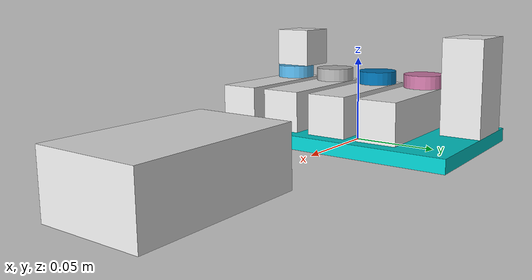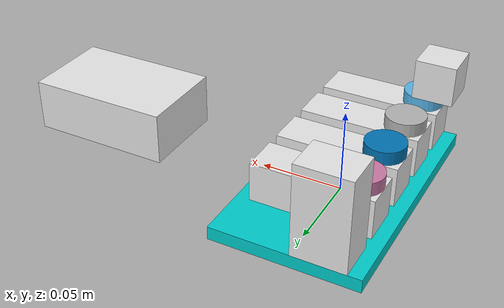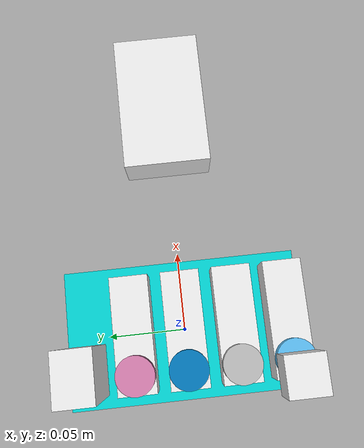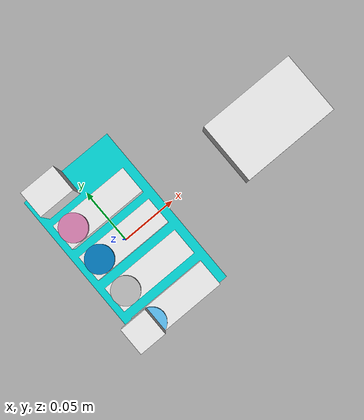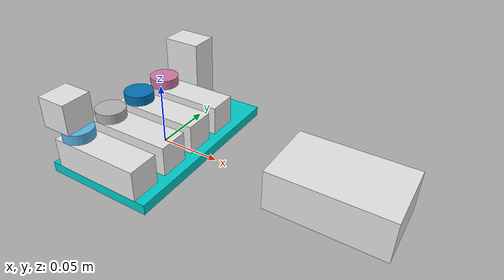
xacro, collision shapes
<?xml version="1.0" ?>
<robot name="basic_robot" xmlns:xacro="http://wiki.ros.org/xacro">
  <xacro:include filename="$(find lego_spike_description)/urdf/lego_materials.urdf.xacro" />
  <xacro:include filename="$(find lego_spike_description)/urdf/lego_hub.urdf.xacro" />
  <xacro:include filename="$(find lego_spike_description)/urdf/lego_base_plate.urdf.xacro" />
  <xacro:include filename="$(find lego_spike_description)/urdf/lego_motor.urdf.xacro" />
  <xacro:include filename="$(find lego_spike_description)/urdf/lego_distance_sensor.urdf.xacro" />
  <xacro:include filename="$(find lego_spike_description)/urdf/lego_color_sensor.urdf.xacro" />

  <link name="base_link" />

  <xacro:lego_base_plate name="base_plate" parent="base_link">
    <origin xyz="0 0 0" rpy="0 0 1.57079" />
  </xacro:lego_base_plate>

  <xacro:lego_hub name="lego_hub" parent="base_link">
    <origin xyz="0.15 0 0" rpy="0 0 0" />
  </xacro:lego_hub>

  <xacro:lego_motor port="a" parent="base_plate_top_link">
    <origin xyz="${lego_stud_spacing * 4} 0 0" rpy="0 0 ${pi/2}" />
  </xacro:lego_motor>
  <xacro:lego_motor port="b" parent="base_plate_top_link">
    <origin xyz="-${lego_stud_spacing * 8} 0 0" rpy="0 0 ${pi/2}" />
  </xacro:lego_motor>
  <xacro:lego_motor port="c" parent="base_plate_top_link">
    <origin xyz="0 0 0" rpy="0 0 ${pi/2}" />
  </xacro:lego_motor>
  <xacro:lego_motor port="d" parent="base_plate_top_link">
    <origin xyz="-${lego_stud_spacing * 4} 0 0" rpy="0 0 ${pi/2}" />
  </xacro:lego_motor>

  <xacro:lego_distance_sensor port="e" parent="base_plate_top_link">
    <origin xyz="${lego_stud_spacing * 8} ${lego_stud_spacing * 1} ${lego_stud_spacing * 3.5}" rpy="-${pi/2} 0 ${pi/2}" />
  </xacro:lego_distance_sensor>

  <xacro:lego_color_sensor port="f" parent="motor_b_wheel_link">
    <origin xyz="0 0 ${lego_stud_spacing * 1.5}" rpy="${pi/2} 0 0" />
  </xacro:lego_color_sensor>
</robot>

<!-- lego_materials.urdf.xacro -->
<robot xmlns:xacro="http://wiki.ros.org/xacro">
  <material name="lego_white">
    <color rgba="0.9 0.9 0.9 1.0" />
  </material>
  <material name="lego_black">
    <color rgba="0.1 0.1 0.1 1.0" />
  </material>
  <material name="lego_teal">
    <color rgba="0.0 0.8 0.8 1.0" />
  </material>
  <material name="lego_yellow">
    <color rgba="0.8 0.8 0.0 1.0" />
  </material>

</robot>

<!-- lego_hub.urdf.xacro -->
<robot xmlns:xacro="http://wiki.ros.org/xacro">
  <xacro:include filename="$(find lego_spike_description)/urdf/lego_dimensions.urdf.xacro" />

  <xacro:macro name="lego_hub" params="name parent *origin">
    <link name="${name}_link">
      <visual>
        <geometry>
          <mesh filename="package://lego_spike_description/meshes/SpikePrimeHub.stl" scale="0.0004 0.0004 0.0004"/>
        </geometry>
        <material name="lego_white" />
        <origin xyz="0.004 00.004 0" rpy="1.5707963267948966 0 -1.5707963267948966" />
      </visual>
      <collision>
        <geometry>
          <box size="0.088 0.056 0.032" />
        </geometry>
        <origin xyz="0 0 0.016" rpy="0 0 0" />
      </collision>
    </link>
    <joint name="${name}_joint" type="fixed">
      <parent link="${parent}" />
      <child link="${name}_link" />
      <xacro:insert_block name="origin" />
    </joint>

    <link name="${name}_imu_link" />
    <joint name="${name}_imu_joint" type="fixed">
      <parent link="${name}_link" />
      <child link="${name}_imu_link" />
      <!-- TODO: exact IMU position -->
      <origin xyz="0 0 0" rpy="0 0 1.57079" />
    </joint>
  </xacro:macro>
</robot>

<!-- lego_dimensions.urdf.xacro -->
<robot xmlns:xacro="http://wiki.ros.org/xacro">
  <xacro:property name="pi" value="3.141592653589793"/>

  <xacro:property name="lego_stud_spacing"     value="0.0080"/> <!-- center-to-center -->
  <xacro:property name="lego_brick_height"     value="0.0096"/> <!-- excludes stud -->
  <xacro:property name="lego_brick_width"      value="0.0078"/> <!-- 1x1 brick side length -->
  <xacro:property name="lego_plate_height"     value="0.0032"/> <!-- excludes stud -->
  <xacro:property name="lego_stud_height"      value="0.0017"/>
</robot>

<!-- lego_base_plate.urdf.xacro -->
<robot xmlns:xacro="http://wiki.ros.org/xacro">
  <xacro:include filename="$(find lego_spike_description)/urdf/lego_dimensions.urdf.xacro" />

  <!--
    The 11x19 hole lego technic plate included in Lego Mindstorms 51515
    Model is centered on the middle with the long dimension along the X axis
  -->
  <xacro:macro name="lego_base_plate" params="name parent *origin">
    <link name="${name}_link">
      <visual>
        <geometry>
          <mesh filename="package://lego_spike_description/meshes/SpikePrimeBasePlate.stl" scale="0.0004 0.0004 0.0004"/>
        </geometry>
        <material name="lego_teal" />
        <origin xyz="-${lego_stud_spacing*1.5} -${lego_stud_spacing/2} 0" rpy="1.5707963267948966 0 -1.5707963267948966" />
      </visual>
      <collision>
        <geometry>
          <box size="${lego_stud_spacing * 19} ${lego_stud_spacing * 11} ${lego_stud_spacing}" />
        </geometry>
        <origin xyz="0 0 ${lego_brick_width/2}" rpy="0 0 0" />
      </collision>
    </link>
    <joint name="${name}_joint" type="fixed">
      <parent link="${parent}" />
      <child link="${name}_link" />
      <xacro:insert_block name="origin" />
    </joint>

    <link name="${name}_top_link" />
    <joint name="${name}_top_joint" type="fixed">
      <parent link="${name}_link" />
      <child link="${name}_top_link" />
      <!-- Height is the width of a standard brick, not the height of a brick! -->
      <origin xyz="0 0 ${lego_brick_width}" rpy="0 0 0" />
    </joint>
  </xacro:macro>
</robot>

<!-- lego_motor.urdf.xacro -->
<robot xmlns:xacro="http://wiki.ros.org/xacro">
  <xacro:include filename="$(find lego_spike_description)/urdf/lego_dimensions.urdf.xacro" />

  <!--
    Standard Lego Mindstorms 51515 motor
    Motor rotates around the Z axis
  -->
  <xacro:macro name="lego_motor" params="port parent *origin">
    <link name="motor_${port}_link">
      <visual>
        <geometry>
          <mesh filename="package://lego_spike_description/meshes/SpikePrimeMotor.stl" scale="0.0004 0.0004 0.0004"/>
        </geometry>
        <material name="lego_white" />
        <origin xyz="${lego_stud_spacing/2} 0.0045 0" rpy="1.5707963267948966 0 1.5707963267948966" />
      </visual>
      <collision>
        <geometry>
          <box size="${lego_stud_spacing * 9} ${lego_stud_spacing * 3} ${lego_stud_spacing * 3}" />
        </geometry>
        <origin xyz="0 0 ${lego_stud_spacing * 1.5}" rpy="0 0 0" />
      </collision>
    </link>
    <joint name="motor_${port}_joint" type="fixed">
      <parent link="${parent}" />
      <child link="motor_${port}_link" />
      <xacro:insert_block name="origin" />
    </joint>

    <link name="motor_${port}_wheel_link">
      <collision>
        <geometry>
          <cylinder radius="${lego_stud_spacing * 1.5}" length="${lego_stud_spacing}" />
        </geometry>
        <origin xyz="0 0 -${lego_stud_spacing * 0.5}" rpy="0 0 0" />
      </collision>
    </link>
    <joint name="motor_${port}_wheel_joint" type="continuous">
      <parent link="motor_${port}_link" />
      <child link="motor_${port}_wheel_link" />
      <origin xyz="0.024 0 0.032" rpy="0 0 0" />
      <axis xyz="0 0 1" />
    </joint>

    <link name="motor_${port}_axle_link" />
    <joint name="motor_${port}_axle_joint" type="fixed">
      <parent link="motor_${port}_wheel_link" />
      <child link="motor_${port}_axle_link" />
      <origin xyz="0 0 -${lego_brick_width * 4}" rpy="${pi} 0 0" />
    </joint>
  </xacro:macro>
</robot>

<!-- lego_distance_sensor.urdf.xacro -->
<robot xmlns:xacro="http://wiki.ros.org/xacro">
  <xacro:include filename="$(find lego_spike_description)/urdf/lego_dimensions.urdf.xacro" />

  <xacro:macro name="lego_distance_sensor" params="port parent *origin">
    <link name="distance_${port}_link">
      <visual>
        <geometry>
          <mesh filename="package://lego_spike_description/meshes/SpikePrimeDistanceSensor.stl" scale="0.0004 0.0004 0.0004"/>
        </geometry>
        <material name="lego_white" />
        <origin xyz="${lego_stud_spacing * 1.5} 0 -${lego_stud_spacing * 1.5}" rpy="1.5707963267948966 0 1.5707963267948966" />
      </visual>
      <collision>
        <geometry>
          <box size="${lego_stud_spacing * 4} ${lego_stud_spacing * 7} ${lego_stud_spacing * 3}" />
        </geometry>
        <origin xyz="${lego_stud_spacing * 1.5} 0 0" rpy="0 0 0" />
      </collision>
    </link>
    <joint name="distance_${port}_joint" type="fixed">
      <parent link="${parent}" />
      <child link="distance_${port}_link" />
      <xacro:insert_block name="origin" />
    </joint>
  </xacro:macro>
</robot>

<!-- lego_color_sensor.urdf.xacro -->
<robot xmlns:xacro="http://wiki.ros.org/xacro">
  <xacro:include filename="$(find lego_spike_description)/urdf/lego_dimensions.urdf.xacro" />

  <!--
    Lego Mindstorms 51515 color/light sensor.
    Origin is the center-back near the cable attachment, rounded edges up/down
  -->
  <xacro:macro name="lego_color_sensor" params="port parent *origin">
    <link name="color_${port}_link">
      <visual>
        <geometry>
          <mesh filename="package://lego_spike_description/meshes/SpikePrimeColorSensor.stl" scale="0.0004 0.0004 0.0004"/>
        </geometry>
        <material name="lego_white" />
        <origin xyz="${lego_stud_spacing} 0 -${lego_stud_spacing * 1.5}" rpy="1.5707963267948966 0 1.5707963267948966" />
      </visual>
      <collision>
        <geometry>
          <box size="${lego_stud_spacing * 3} ${lego_stud_spacing * 3} ${lego_stud_spacing * 3}" />
        </geometry>
        <origin xyz="${lego_stud_spacing * 1} 0 0" rpy="0 0 0" />
      </collision>
    </link>
    <joint name="color_${port}_joint" type="fixed">
      <parent link="${parent}" />
      <child link="color_${port}_link" />
      <xacro:insert_block name="origin" />
    </joint>
  </xacro:macro>
</robot>
